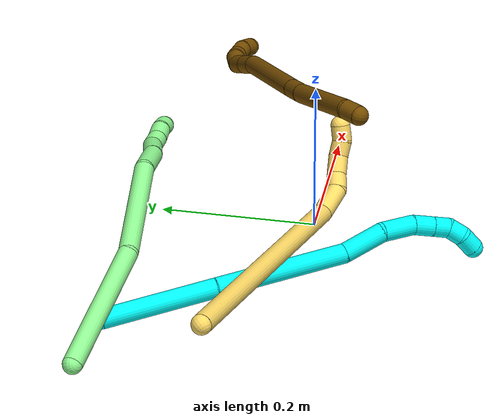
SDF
<sdf version="1.7">
 <world name="default">
  <model name="3">
   <static>0</static>
   <link name="3">
    <collision name="collision-cylinder-e_1_1_4">
     <pose>0.029293 -0.052501 -0.03943 2.21495 0.419638 0.805866</pose>
     <geometry><cylinder><radius>0.0125</radius><length>0.143794</length></cylinder></geometry>
     <surface>
      <friction><ode><mu>1.16</mu><mu2>1.16</mu2><slip1>0</slip1><slip2>0</slip2></ode></friction>
      <contact><ode><kp>1e+06</kp><kd>1</kd><max_vel>0</max_vel><min_depth>0.001</min_depth></ode></contact>
     </surface>
    </collision>
    <visual name="visual-cylinder-e_1_1_4">
     <pose>0.029293 -0.052501 -0.03943 2.21495 0.419638 0.805866</pose>
     <geometry><cylinder><radius>0.0125</radius><length>0.143794</length></cylinder></geometry>
     <material><ambient>0.003922 1 0.996078 1</ambient></material>
    </visual>
    <collision name="collision-cylinder-e_2_4_5">
     <pose>0.084116 -0.169724 -0.125956 2.19986 0.308747 0.59333</pose>
     <geometry><cylinder><radius>0.0125</radius><length>0.168033</length></cylinder></geometry>
     <surface>
      <friction><ode><mu>1.16</mu><mu2>1.16</mu2><slip1>0</slip1><slip2>0</slip2></ode></friction>
      <contact><ode><kp>1e+06</kp><kd>1</kd><max_vel>0</max_vel><min_depth>0.001</min_depth></ode></contact>
     </surface>
    </collision>
    <visual name="visual-cylinder-e_2_4_5">
     <pose>0.084116 -0.169724 -0.125956 2.19986 0.308747 0.59333</pose>
     <geometry><cylinder><radius>0.0125</radius><length>0.168033</length></cylinder></geometry>
     <material><ambient>0.003922 1 0.996078 1</ambient></material>
    </visual>
    <collision name="collision-cylinder-e_3_5_6">
     <pose>0.119012 -0.250527 -0.193002 2.46314 0.350461 0.930069</pose>
     <geometry><cylinder><radius>0.0125</radius><length>0.054565</length></cylinder></geometry>
     <surface>
      <friction><ode><mu>1.16</mu><mu2>1.16</mu2><slip1>0</slip1><slip2>0</slip2></ode></friction>
      <contact><ode><kp>1e+06</kp><kd>1</kd><max_vel>0</max_vel><min_depth>0.001</min_depth></ode></contact>
     </surface>
    </collision>
    <visual name="visual-cylinder-e_3_5_6">
     <pose>0.119012 -0.250527 -0.193002 2.46314 0.350461 0.930069</pose>
     <geometry><cylinder><radius>0.0125</radius><length>0.054565</length></cylinder></geometry>
     <material><ambient>0.003922 1 0.996078 1</ambient></material>
    </visual>
    <collision name="collision-cylinder-e_4_6_7">
     <pose>0.131897 -0.284765 -0.225082 2.1598 0.159736 0.297257</pose>
     <geometry><cylinder><radius>0.0125</radius><length>0.044234</length></cylinder></geometry>
     <surface>
      <friction><ode><mu>1.16</mu><mu2>1.16</mu2><slip1>0</slip1><slip2>0</slip2></ode></friction>
      <contact><ode><kp>1e+06</kp><kd>1</kd><max_vel>0</max_vel><min_depth>0.001</min_depth></ode></contact>
     </surface>
    </collision>
    <visual name="visual-cylinder-e_4_6_7">
     <pose>0.131897 -0.284765 -0.225082 2.1598 0.159736 0.297257</pose>
     <geometry><cylinder><radius>0.0125</radius><length>0.044234</length></cylinder></geometry>
     <material><ambient>0.003922 1 0.996078 1</ambient></material>
    </visual>
    <collision name="collision-cylinder-e_5_7_8">
     <pose>0.139739 -0.314891 -0.24067 1.85205 0.334028 0.441077</pose>
     <geometry><cylinder><radius>0.0125</radius><length>0.026378</length></cylinder></geometry>
     <surface>
      <friction><ode><mu>1.16</mu><mu2>1.16</mu2><slip1>0</slip1><slip2>0</slip2></ode></friction>
      <contact><ode><kp>1e+06</kp><kd>1</kd><max_vel>0</max_vel><min_depth>0.001</min_depth></ode></contact>
     </surface>
    </collision>
    <visual name="visual-cylinder-e_5_7_8">
     <pose>0.139739 -0.314891 -0.24067 1.85205 0.334028 0.441077</pose>
     <geometry><cylinder><radius>0.0125</radius><length>0.026378</length></cylinder></geometry>
     <material><ambient>0.003922 1 0.996078 1</ambient></material>
    </visual>
    <collision name="collision-cylinder-e_6_8_9">
     <pose>0.147428 -0.336113 -0.246798 1.85176 0.336269 0.443868</pose>
     <geometry><cylinder><radius>0.0125</radius><length>0.0204</length></cylinder></geometry>
     <surface>
      <friction><ode><mu>1.16</mu><mu2>1.16</mu2><slip1>0</slip1><slip2>0</slip2></ode></friction>
      <contact><ode><kp>1e+06</kp><kd>1</kd><max_vel>0</max_vel><min_depth>0.001</min_depth></ode></contact>
     </surface>
    </collision>
    <visual name="visual-cylinder-e_6_8_9">
     <pose>0.147428 -0.336113 -0.246798 1.85176 0.336269 0.443868</pose>
     <geometry><cylinder><radius>0.0125</radius><length>0.0204</length></cylinder></geometry>
     <material><ambient>0.003922 1 0.996078 1</ambient></material>
    </visual>
    <collision name="collision-cylinder-e_7_9_10">
     <pose>0.154352 -0.354648 -0.247384 1.34998 0.357817 0.287499</pose>
     <geometry><cylinder><radius>0.0125</radius><length>0.020318</length></cylinder></geometry>
     <surface>
      <friction><ode><mu>1.16</mu><mu2>1.16</mu2><slip1>0</slip1><slip2>0</slip2></ode></friction>
      <contact><ode><kp>1e+06</kp><kd>1</kd><max_vel>0</max_vel><min_depth>0.001</min_depth></ode></contact>
     </surface>
    </collision>
    <visual name="visual-cylinder-e_7_9_10">
     <pose>0.154352 -0.354648 -0.247384 1.34998 0.357817 0.287499</pose>
     <geometry><cylinder><radius>0.0125</radius><length>0.020318</length></cylinder></geometry>
     <material><ambient>0.003922 1 0.996078 1</ambient></material>
    </visual>
    <collision name="collision-cylinder-e_8_10_2">
     <pose>0.157429 -0.374529 -0.241897 1.26001 -0.04319 -0.031493</pose>
     <geometry><cylinder><radius>0.0125</radius><length>0.022279</length></cylinder></geometry>
     <surface>
      <friction><ode><mu>1.16</mu><mu2>1.16</mu2><slip1>0</slip1><slip2>0</slip2></ode></friction>
      <contact><ode><kp>1e+06</kp><kd>1</kd><max_vel>0</max_vel><min_depth>0.001</min_depth></ode></contact>
     </surface>
    </collision>
    <visual name="visual-cylinder-e_8_10_2">
     <pose>0.157429 -0.374529 -0.241897 1.26001 -0.04319 -0.031493</pose>
     <geometry><cylinder><radius>0.0125</radius><length>0.022279</length></cylinder></geometry>
     <material><ambient>0.003922 1 0.996078 1</ambient></material>
    </visual>
    <collision name="collision-sphere-2">
     <pose>0.156948 -0.385125 -0.238493 0 -0 0</pose>
     <geometry><sphere><radius>0.0125</radius></sphere></geometry>
     <surface>
      <friction><ode><mu>1.16</mu><mu2>1.16</mu2><slip1>0</slip1><slip2>0</slip2></ode></friction>
      <contact><ode><kp>1e+06</kp><kd>1</kd><max_vel>0</max_vel><min_depth>0.001</min_depth></ode></contact>
     </surface>
    </collision>
    <visual name="visual-sphere-2">
     <pose>0.156948 -0.385125 -0.238493 0 -0 0</pose>
     <geometry><sphere><radius>0.0125</radius></sphere></geometry>
     <material><ambient>0.003922 1 0.996078 1</ambient></material>
    </visual>
    <collision name="collision-sphere-10">
     <pose>0.15791 -0.363933 -0.2453 0 -0 0</pose>
     <geometry><sphere><radius>0.0125</radius></sphere></geometry>
     <surface>
      <friction><ode><mu>1.16</mu><mu2>1.16</mu2><slip1>0</slip1><slip2>0</slip2></ode></friction>
      <contact><ode><kp>1e+06</kp><kd>1</kd><max_vel>0</max_vel><min_depth>0.001</min_depth></ode></contact>
     </surface>
    </collision>
    <visual name="visual-sphere-10">
     <pose>0.15791 -0.363933 -0.2453 0 -0 0</pose>
     <geometry><sphere><radius>0.0125</radius></sphere></geometry>
     <material><ambient>0.003922 1 0.996078 1</ambient></material>
    </visual>
    <collision name="collision-sphere-9">
     <pose>0.150794 -0.345364 -0.249468 0 -0 0</pose>
     <geometry><sphere><radius>0.0125</radius></sphere></geometry>
     <surface>
      <friction><ode><mu>1.16</mu><mu2>1.16</mu2><slip1>0</slip1><slip2>0</slip2></ode></friction>
      <contact><ode><kp>1e+06</kp><kd>1</kd><max_vel>0</max_vel><min_depth>0.001</min_depth></ode></contact>
     </surface>
    </collision>
    <visual name="visual-sphere-9">
     <pose>0.150794 -0.345364 -0.249468 0 -0 0</pose>
     <geometry><sphere><radius>0.0125</radius></sphere></geometry>
     <material><ambient>0.003922 1 0.996078 1</ambient></material>
    </visual>
    <collision name="collision-sphere-4">
     <pose>0.058586 -0.105003 -0.078859 0 -0 0</pose>
     <geometry><sphere><radius>0.0125</radius></sphere></geometry>
     <surface>
      <friction><ode><mu>1.16</mu><mu2>1.16</mu2><slip1>0</slip1><slip2>0</slip2></ode></friction>
      <contact><ode><kp>1e+06</kp><kd>1</kd><max_vel>0</max_vel><min_depth>0.001</min_depth></ode></contact>
     </surface>
    </collision>
    <visual name="visual-sphere-4">
     <pose>0.058586 -0.105003 -0.078859 0 -0 0</pose>
     <geometry><sphere><radius>0.0125</radius></sphere></geometry>
     <material><ambient>0.003922 1 0.996078 1</ambient></material>
    </visual>
    <collision name="collision-sphere-1">
     <geometry><sphere><radius>0.0125</radius></sphere></geometry>
     <surface>
      <friction><ode><mu>1.16</mu><mu2>1.16</mu2><slip1>0</slip1><slip2>0</slip2></ode></friction>
      <contact><ode><kp>1e+06</kp><kd>1</kd><max_vel>0</max_vel><min_depth>0.001</min_depth></ode></contact>
     </surface>
    </collision>
    <visual name="visual-sphere-1">
     <geometry><sphere><radius>0.0125</radius></sphere></geometry>
     <material><ambient>0.003922 1 0.996078 1</ambient></material>
    </visual>
    <collision name="collision-sphere-8">
     <pose>0.144063 -0.326862 -0.244129 0 -0 0</pose>
     <geometry><sphere><radius>0.0125</radius></sphere></geometry>
     <surface>
      <friction><ode><mu>1.16</mu><mu2>1.16</mu2><slip1>0</slip1><slip2>0</slip2></ode></friction>
      <contact><ode><kp>1e+06</kp><kd>1</kd><max_vel>0</max_vel><min_depth>0.001</min_depth></ode></contact>
     </surface>
    </collision>
    <visual name="visual-sphere-8">
     <pose>0.144063 -0.326862 -0.244129 0 -0 0</pose>
     <geometry><sphere><radius>0.0125</radius></sphere></geometry>
     <material><ambient>0.003922 1 0.996078 1</ambient></material>
    </visual>
    <collision name="collision-sphere-5">
     <pose>0.109645 -0.234446 -0.173053 0 -0 0</pose>
     <geometry><sphere><radius>0.0125</radius></sphere></geometry>
     <surface>
      <friction><ode><mu>1.16</mu><mu2>1.16</mu2><slip1>0</slip1><slip2>0</slip2></ode></friction>
      <contact><ode><kp>1e+06</kp><kd>1</kd><max_vel>0</max_vel><min_depth>0.001</min_depth></ode></contact>
     </surface>
    </collision>
    <visual name="visual-sphere-5">
     <pose>0.109645 -0.234446 -0.173053 0 -0 0</pose>
     <geometry><sphere><radius>0.0125</radius></sphere></geometry>
     <material><ambient>0.003922 1 0.996078 1</ambient></material>
    </visual>
    <collision name="collision-sphere-6">
     <pose>0.128379 -0.266609 -0.212951 0 -0 0</pose>
     <geometry><sphere><radius>0.0125</radius></sphere></geometry>
     <surface>
      <friction><ode><mu>1.16</mu><mu2>1.16</mu2><slip1>0</slip1><slip2>0</slip2></ode></friction>
      <contact><ode><kp>1e+06</kp><kd>1</kd><max_vel>0</max_vel><min_depth>0.001</min_depth></ode></contact>
     </surface>
    </collision>
    <visual name="visual-sphere-6">
     <pose>0.128379 -0.266609 -0.212951 0 -0 0</pose>
     <geometry><sphere><radius>0.0125</radius></sphere></geometry>
     <material><ambient>0.003922 1 0.996078 1</ambient></material>
    </visual>
    <collision name="collision-sphere-7">
     <pose>0.135415 -0.302921 -0.237212 0 -0 0</pose>
     <geometry><sphere><radius>0.0125</radius></sphere></geometry>
     <surface>
      <friction><ode><mu>1.16</mu><mu2>1.16</mu2><slip1>0</slip1><slip2>0</slip2></ode></friction>
      <contact><ode><kp>1e+06</kp><kd>1</kd><max_vel>0</max_vel><min_depth>0.001</min_depth></ode></contact>
     </surface>
    </collision>
    <visual name="visual-sphere-7">
     <pose>0.135415 -0.302921 -0.237212 0 -0 0</pose>
     <geometry><sphere><radius>0.0125</radius></sphere></geometry>
     <material><ambient>0.003922 1 0.996078 1</ambient></material>
    </visual>
    <inertial>
     <pose>0.088023 -0.186095 -0.138241 0 -0 0</pose>
     <mass>0.5</mass>
     <inertia>
      <ixx>0.000911</ixx>
      <ixy>0</ixy>
      <ixz>0</ixz>
      <iyy>0.000172</iyy>
      <iyz>0</iyz>
      <izz>0.000265</izz>
     </inertia>
    </inertial>
   </link>
   <pose>-0.268062 0.213175 0.011609 2.39024 -0.535032 -2.25979</pose>
  </model>
  <model name="5">
   <static>0</static>
   <link name="5">
    <collision name="collision-cylinder-e_1_1_4">
     <pose>0.171902 0.005794 0.068855 -0.083945 1.1886 -0.056748</pose>
     <geometry><cylinder><radius>0.0125</radius><length>0.37054</length></cylinder></geometry>
     <surface>
      <friction><ode><mu>1.16</mu><mu2>1.16</mu2><slip1>0</slip1><slip2>0</slip2></ode></friction>
      <contact><ode><kp>1e+06</kp><kd>1</kd><max_vel>0</max_vel><min_depth>0.001</min_depth></ode></contact>
     </surface>
    </collision>
    <visual name="visual-cylinder-e_1_1_4">
     <pose>0.171902 0.005794 0.068855 -0.083945 1.1886 -0.056748</pose>
     <geometry><cylinder><radius>0.0125</radius><length>0.37054</length></cylinder></geometry>
     <material><ambient>1 0.858824 0.4 1</ambient></material>
    </visual>
    <collision name="collision-cylinder-e_2_4_5">
     <pose>0.359313 0.002841 0.148162 0.696792 0.849824 0.325778</pose>
     <geometry><cylinder><radius>0.0125</radius><length>0.041292</length></cylinder></geometry>
     <surface>
      <friction><ode><mu>1.16</mu><mu2>1.16</mu2><slip1>0</slip1><slip2>0</slip2></ode></friction>
      <contact><ode><kp>1e+06</kp><kd>1</kd><max_vel>0</max_vel><min_depth>0.001</min_depth></ode></contact>
     </surface>
    </collision>
    <visual name="visual-cylinder-e_2_4_5">
     <pose>0.359313 0.002841 0.148162 0.696792 0.849824 0.325778</pose>
     <geometry><cylinder><radius>0.0125</radius><length>0.041292</length></cylinder></geometry>
     <material><ambient>1 0.858824 0.4 1</ambient></material>
    </visual>
    <collision name="collision-cylinder-e_3_5_6">
     <pose>0.379373 -0.00891 0.16788 0.313547 0.437092 0.070184</pose>
     <geometry><cylinder><radius>0.0125</radius><length>0.021504</length></cylinder></geometry>
     <surface>
      <friction><ode><mu>1.16</mu><mu2>1.16</mu2><slip1>0</slip1><slip2>0</slip2></ode></friction>
      <contact><ode><kp>1e+06</kp><kd>1</kd><max_vel>0</max_vel><min_depth>0.001</min_depth></ode></contact>
     </surface>
    </collision>
    <visual name="visual-cylinder-e_3_5_6">
     <pose>0.379373 -0.00891 0.16788 0.313547 0.437092 0.070184</pose>
     <geometry><cylinder><radius>0.0125</radius><length>0.021504</length></cylinder></geometry>
     <material><ambient>1 0.858824 0.4 1</ambient></material>
    </visual>
    <collision name="collision-cylinder-e_4_6_7">
     <pose>0.388449 -0.018464 0.187512 0.563523 0.353482 0.103307</pose>
     <geometry><cylinder><radius>0.0125</radius><length>0.026141</length></cylinder></geometry>
     <surface>
      <friction><ode><mu>1.16</mu><mu2>1.16</mu2><slip1>0</slip1><slip2>0</slip2></ode></friction>
      <contact><ode><kp>1e+06</kp><kd>1</kd><max_vel>0</max_vel><min_depth>0.001</min_depth></ode></contact>
     </surface>
    </collision>
    <visual name="visual-cylinder-e_4_6_7">
     <pose>0.388449 -0.018464 0.187512 0.563523 0.353482 0.103307</pose>
     <geometry><cylinder><radius>0.0125</radius><length>0.026141</length></cylinder></geometry>
     <material><ambient>1 0.858824 0.4 1</ambient></material>
    </visual>
    <collision name="collision-cylinder-e_5_7_8">
     <pose>0.39461 -0.032951 0.204028 0.911549 0.161622 0.079358</pose>
     <geometry><cylinder><radius>0.0125</radius><length>0.020346</length></cylinder></geometry>
     <surface>
      <friction><ode><mu>1.16</mu><mu2>1.16</mu2><slip1>0</slip1><slip2>0</slip2></ode></friction>
      <contact><ode><kp>1e+06</kp><kd>1</kd><max_vel>0</max_vel><min_depth>0.001</min_depth></ode></contact>
     </surface>
    </collision>
    <visual name="visual-cylinder-e_5_7_8">
     <pose>0.39461 -0.032951 0.204028 0.911549 0.161622 0.079358</pose>
     <geometry><cylinder><radius>0.0125</radius><length>0.020346</length></cylinder></geometry>
     <material><ambient>1 0.858824 0.4 1</ambient></material>
    </visual>
    <collision name="collision-cylinder-e_6_8_2">
     <pose>0.394908 -0.047287 0.217862 0.694524 -0.133123 -0.048243</pose>
     <geometry><cylinder><radius>0.0125</radius><length>0.020178</length></cylinder></geometry>
     <surface>
      <friction><ode><mu>1.16</mu><mu2>1.16</mu2><slip1>0</slip1><slip2>0</slip2></ode></friction>
      <contact><ode><kp>1e+06</kp><kd>1</kd><max_vel>0</max_vel><min_depth>0.001</min_depth></ode></contact>
     </surface>
    </collision>
    <visual name="visual-cylinder-e_6_8_2">
     <pose>0.394908 -0.047287 0.217862 0.694524 -0.133123 -0.048243</pose>
     <geometry><cylinder><radius>0.0125</radius><length>0.020178</length></cylinder></geometry>
     <material><ambient>1 0.858824 0.4 1</ambient></material>
    </visual>
    <collision name="collision-sphere-2">
     <pose>0.393569 -0.053687 0.225545 0 -0 0</pose>
     <geometry><sphere><radius>0.0125</radius></sphere></geometry>
     <surface>
      <friction><ode><mu>1.16</mu><mu2>1.16</mu2><slip1>0</slip1><slip2>0</slip2></ode></friction>
      <contact><ode><kp>1e+06</kp><kd>1</kd><max_vel>0</max_vel><min_depth>0.001</min_depth></ode></contact>
     </surface>
    </collision>
    <visual name="visual-sphere-2">
     <pose>0.393569 -0.053687 0.225545 0 -0 0</pose>
     <geometry><sphere><radius>0.0125</radius></sphere></geometry>
     <material><ambient>1 0.858824 0.4 1</ambient></material>
    </visual>
    <collision name="collision-sphere-4">
     <pose>0.343805 0.011587 0.13771 0 -0 0</pose>
     <geometry><sphere><radius>0.0125</radius></sphere></geometry>
     <surface>
      <friction><ode><mu>1.16</mu><mu2>1.16</mu2><slip1>0</slip1><slip2>0</slip2></ode></friction>
      <contact><ode><kp>1e+06</kp><kd>1</kd><max_vel>0</max_vel><min_depth>0.001</min_depth></ode></contact>
     </surface>
    </collision>
    <visual name="visual-sphere-4">
     <pose>0.343805 0.011587 0.13771 0 -0 0</pose>
     <geometry><sphere><radius>0.0125</radius></sphere></geometry>
     <material><ambient>1 0.858824 0.4 1</ambient></material>
    </visual>
    <collision name="collision-sphere-1">
     <geometry><sphere><radius>0.0125</radius></sphere></geometry>
     <surface>
      <friction><ode><mu>1.16</mu><mu2>1.16</mu2><slip1>0</slip1><slip2>0</slip2></ode></friction>
      <contact><ode><kp>1e+06</kp><kd>1</kd><max_vel>0</max_vel><min_depth>0.001</min_depth></ode></contact>
     </surface>
    </collision>
    <visual name="visual-sphere-1">
     <geometry><sphere><radius>0.0125</radius></sphere></geometry>
     <material><ambient>1 0.858824 0.4 1</ambient></material>
    </visual>
    <collision name="collision-sphere-8">
     <pose>0.396247 -0.040887 0.210178 0 -0 0</pose>
     <geometry><sphere><radius>0.0125</radius></sphere></geometry>
     <surface>
      <friction><ode><mu>1.16</mu><mu2>1.16</mu2><slip1>0</slip1><slip2>0</slip2></ode></friction>
      <contact><ode><kp>1e+06</kp><kd>1</kd><max_vel>0</max_vel><min_depth>0.001</min_depth></ode></contact>
     </surface>
    </collision>
    <visual name="visual-sphere-8">
     <pose>0.396247 -0.040887 0.210178 0 -0 0</pose>
     <geometry><sphere><radius>0.0125</radius></sphere></geometry>
     <material><ambient>1 0.858824 0.4 1</ambient></material>
    </visual>
    <collision name="collision-sphere-5">
     <pose>0.374822 -0.005905 0.158614 0 -0 0</pose>
     <geometry><sphere><radius>0.0125</radius></sphere></geometry>
     <surface>
      <friction><ode><mu>1.16</mu><mu2>1.16</mu2><slip1>0</slip1><slip2>0</slip2></ode></friction>
      <contact><ode><kp>1e+06</kp><kd>1</kd><max_vel>0</max_vel><min_depth>0.001</min_depth></ode></contact>
     </surface>
    </collision>
    <visual name="visual-sphere-5">
     <pose>0.374822 -0.005905 0.158614 0 -0 0</pose>
     <geometry><sphere><radius>0.0125</radius></sphere></geometry>
     <material><ambient>1 0.858824 0.4 1</ambient></material>
    </visual>
    <collision name="collision-sphere-6">
     <pose>0.383924 -0.011914 0.177146 0 -0 0</pose>
     <geometry><sphere><radius>0.0125</radius></sphere></geometry>
     <surface>
      <friction><ode><mu>1.16</mu><mu2>1.16</mu2><slip1>0</slip1><slip2>0</slip2></ode></friction>
      <contact><ode><kp>1e+06</kp><kd>1</kd><max_vel>0</max_vel><min_depth>0.001</min_depth></ode></contact>
     </surface>
    </collision>
    <visual name="visual-sphere-6">
     <pose>0.383924 -0.011914 0.177146 0 -0 0</pose>
     <geometry><sphere><radius>0.0125</radius></sphere></geometry>
     <material><ambient>1 0.858824 0.4 1</ambient></material>
    </visual>
    <collision name="collision-sphere-7">
     <pose>0.392973 -0.025014 0.197879 0 -0 0</pose>
     <geometry><sphere><radius>0.0125</radius></sphere></geometry>
     <surface>
      <friction><ode><mu>1.16</mu><mu2>1.16</mu2><slip1>0</slip1><slip2>0</slip2></ode></friction>
      <contact><ode><kp>1e+06</kp><kd>1</kd><max_vel>0</max_vel><min_depth>0.001</min_depth></ode></contact>
     </surface>
    </collision>
    <visual name="visual-sphere-7">
     <pose>0.392973 -0.025014 0.197879 0 -0 0</pose>
     <geometry><sphere><radius>0.0125</radius></sphere></geometry>
     <material><ambient>1 0.858824 0.4 1</ambient></material>
    </visual>
    <inertial>
     <pose>0.225685 -6.9e-05 0.097381 0 -0 0</pose>
     <mass>0.5</mass>
     <inertia>
      <ixx>0.001538</ixx>
      <ixy>0</ixy>
      <ixz>0</ixz>
      <iyy>0.004171</iyy>
      <iyz>0</iyz>
      <izz>-0.004063</izz>
     </inertia>
    </inertial>
   </link>
   <pose>-0.380001 0.065043 0.101833 -1.05404 0.360237 -0.570574</pose>
  </model>
  <model name="12">
   <static>0</static>
   <link name="12">
    <collision name="collision-cylinder-e_1_1_4">
     <pose>0.005693 0.010055 -0.002356 -1.80098 0.50383 -0.627867</pose>
     <geometry><cylinder><radius>0.0125</radius><length>0.023586</length></cylinder></geometry>
     <surface>
      <friction><ode><mu>1.16</mu><mu2>1.16</mu2><slip1>0</slip1><slip2>0</slip2></ode></friction>
      <contact><ode><kp>1e+06</kp><kd>1</kd><max_vel>0</max_vel><min_depth>0.001</min_depth></ode></contact>
     </surface>
    </collision>
    <visual name="visual-cylinder-e_1_1_4">
     <pose>0.005693 0.010055 -0.002356 -1.80098 0.50383 -0.627867</pose>
     <geometry><cylinder><radius>0.0125</radius><length>0.023586</length></cylinder></geometry>
     <material><ambient>0.466667 0.301961 0 1</ambient></material>
    </visual>
    <collision name="collision-cylinder-e_2_4_5">
     <pose>0.05344 0.059803 -0.03007 -2.13929 0.728836 -1.21654</pose>
     <geometry><cylinder><radius>0.0125</radius><length>0.126284</length></cylinder></geometry>
     <surface>
      <friction><ode><mu>1.16</mu><mu2>1.16</mu2><slip1>0</slip1><slip2>0</slip2></ode></friction>
      <contact><ode><kp>1e+06</kp><kd>1</kd><max_vel>0</max_vel><min_depth>0.001</min_depth></ode></contact>
     </surface>
    </collision>
    <visual name="visual-cylinder-e_2_4_5">
     <pose>0.05344 0.059803 -0.03007 -2.13929 0.728836 -1.21654</pose>
     <geometry><cylinder><radius>0.0125</radius><length>0.126284</length></cylinder></geometry>
     <material><ambient>0.466667 0.301961 0 1</ambient></material>
    </visual>
    <collision name="collision-cylinder-e_3_5_6">
     <pose>0.107157 0.108757 -0.061208 -2.12879 0.818454 -1.32729</pose>
     <geometry><cylinder><radius>0.0125</radius><length>0.031954</length></cylinder></geometry>
     <surface>
      <friction><ode><mu>1.16</mu><mu2>1.16</mu2><slip1>0</slip1><slip2>0</slip2></ode></friction>
      <contact><ode><kp>1e+06</kp><kd>1</kd><max_vel>0</max_vel><min_depth>0.001</min_depth></ode></contact>
     </surface>
    </collision>
    <visual name="visual-cylinder-e_3_5_6">
     <pose>0.107157 0.108757 -0.061208 -2.12879 0.818454 -1.32729</pose>
     <geometry><cylinder><radius>0.0125</radius><length>0.031954</length></cylinder></geometry>
     <material><ambient>0.466667 0.301961 0 1</ambient></material>
    </visual>
    <collision name="collision-cylinder-e_4_6_7">
     <pose>0.183915 0.16473 -0.098248 -2.16054 0.858547 -1.41719</pose>
     <geometry><cylinder><radius>0.0125</radius><length>0.172002</length></cylinder></geometry>
     <surface>
      <friction><ode><mu>1.16</mu><mu2>1.16</mu2><slip1>0</slip1><slip2>0</slip2></ode></friction>
      <contact><ode><kp>1e+06</kp><kd>1</kd><max_vel>0</max_vel><min_depth>0.001</min_depth></ode></contact>
     </surface>
    </collision>
    <visual name="visual-cylinder-e_4_6_7">
     <pose>0.183915 0.16473 -0.098248 -2.16054 0.858547 -1.41719</pose>
     <geometry><cylinder><radius>0.0125</radius><length>0.172002</length></cylinder></geometry>
     <material><ambient>0.466667 0.301961 0 1</ambient></material>
    </visual>
    <collision name="collision-cylinder-e_5_7_8">
     <pose>0.260595 0.220496 -0.138448 -2.3499 0.738531 -1.49408</pose>
     <geometry><cylinder><radius>0.0125</radius><length>0.034422</length></cylinder></geometry>
     <surface>
      <friction><ode><mu>1.16</mu><mu2>1.16</mu2><slip1>0</slip1><slip2>0</slip2></ode></friction>
      <contact><ode><kp>1e+06</kp><kd>1</kd><max_vel>0</max_vel><min_depth>0.001</min_depth></ode></contact>
     </surface>
    </collision>
    <visual name="visual-cylinder-e_5_7_8">
     <pose>0.260595 0.220496 -0.138448 -2.3499 0.738531 -1.49408</pose>
     <geometry><cylinder><radius>0.0125</radius><length>0.034422</length></cylinder></geometry>
     <material><ambient>0.466667 0.301961 0 1</ambient></material>
    </visual>
    <collision name="collision-cylinder-e_6_8_9">
     <pose>0.282537 0.237938 -0.15533 -2.32885 0.731028 -1.45381</pose>
     <geometry><cylinder><radius>0.0125</radius><length>0.031022</length></cylinder></geometry>
     <surface>
      <friction><ode><mu>1.16</mu><mu2>1.16</mu2><slip1>0</slip1><slip2>0</slip2></ode></friction>
      <contact><ode><kp>1e+06</kp><kd>1</kd><max_vel>0</max_vel><min_depth>0.001</min_depth></ode></contact>
     </surface>
    </collision>
    <visual name="visual-cylinder-e_6_8_9">
     <pose>0.282537 0.237938 -0.15533 -2.32885 0.731028 -1.45381</pose>
     <geometry><cylinder><radius>0.0125</radius><length>0.031022</length></cylinder></geometry>
     <material><ambient>0.466667 0.301961 0 1</ambient></material>
    </visual>
    <collision name="collision-cylinder-e_7_9_10">
     <pose>0.301722 0.251277 -0.163848 -1.68716 1.05662 -1.16095</pose>
     <geometry><cylinder><radius>0.0125</radius><length>0.02028</length></cylinder></geometry>
     <surface>
      <friction><ode><mu>1.16</mu><mu2>1.16</mu2><slip1>0</slip1><slip2>0</slip2></ode></friction>
      <contact><ode><kp>1e+06</kp><kd>1</kd><max_vel>0</max_vel><min_depth>0.001</min_depth></ode></contact>
     </surface>
    </collision>
    <visual name="visual-cylinder-e_7_9_10">
     <pose>0.301722 0.251277 -0.163848 -1.68716 1.05662 -1.16095</pose>
     <geometry><cylinder><radius>0.0125</radius><length>0.02028</length></cylinder></geometry>
     <material><ambient>0.466667 0.301961 0 1</ambient></material>
    </visual>
    <collision name="collision-cylinder-e_8_10_11">
     <pose>0.320109 0.257626 -0.167198 -2.67513 1.25688 -2.50973</pose>
     <geometry><cylinder><radius>0.0125</radius><length>0.020097</length></cylinder></geometry>
     <surface>
      <friction><ode><mu>1.16</mu><mu2>1.16</mu2><slip1>0</slip1><slip2>0</slip2></ode></friction>
      <contact><ode><kp>1e+06</kp><kd>1</kd><max_vel>0</max_vel><min_depth>0.001</min_depth></ode></contact>
     </surface>
    </collision>
    <visual name="visual-cylinder-e_8_10_11">
     <pose>0.320109 0.257626 -0.167198 -2.67513 1.25688 -2.50973</pose>
     <geometry><cylinder><radius>0.0125</radius><length>0.020097</length></cylinder></geometry>
     <material><ambient>0.466667 0.301961 0 1</ambient></material>
    </visual>
    <collision name="collision-cylinder-e_9_11_12">
     <pose>0.339699 0.259333 -0.169826 -1.13898 1.53659 -1.10813</pose>
     <geometry><cylinder><radius>0.0125</radius><length>0.020077</length></cylinder></geometry>
     <surface>
      <friction><ode><mu>1.16</mu><mu2>1.16</mu2><slip1>0</slip1><slip2>0</slip2></ode></friction>
      <contact><ode><kp>1e+06</kp><kd>1</kd><max_vel>0</max_vel><min_depth>0.001</min_depth></ode></contact>
     </surface>
    </collision>
    <visual name="visual-cylinder-e_9_11_12">
     <pose>0.339699 0.259333 -0.169826 -1.13898 1.53659 -1.10813</pose>
     <geometry><cylinder><radius>0.0125</radius><length>0.020077</length></cylinder></geometry>
     <material><ambient>0.466667 0.301961 0 1</ambient></material>
    </visual>
    <collision name="collision-cylinder-e_10_12_2">
     <pose>0.359438 0.25728 -0.171403 2.19991 1.2782 1.94047</pose>
     <geometry><cylinder><radius>0.0125</radius><length>0.020276</length></cylinder></geometry>
     <surface>
      <friction><ode><mu>1.16</mu><mu2>1.16</mu2><slip1>0</slip1><slip2>0</slip2></ode></friction>
      <contact><ode><kp>1e+06</kp><kd>1</kd><max_vel>0</max_vel><min_depth>0.001</min_depth></ode></contact>
     </surface>
    </collision>
    <visual name="visual-cylinder-e_10_12_2">
     <pose>0.359438 0.25728 -0.171403 2.19991 1.2782 1.94047</pose>
     <geometry><cylinder><radius>0.0125</radius><length>0.020276</length></cylinder></geometry>
     <material><ambient>0.466667 0.301961 0 1</ambient></material>
    </visual>
    <collision name="collision-sphere-2">
     <pose>0.369145 0.254916 -0.173124 0 -0 0</pose>
     <geometry><sphere><radius>0.0125</radius></sphere></geometry>
     <surface>
      <friction><ode><mu>1.16</mu><mu2>1.16</mu2><slip1>0</slip1><slip2>0</slip2></ode></friction>
      <contact><ode><kp>1e+06</kp><kd>1</kd><max_vel>0</max_vel><min_depth>0.001</min_depth></ode></contact>
     </surface>
    </collision>
    <visual name="visual-sphere-2">
     <pose>0.369145 0.254916 -0.173124 0 -0 0</pose>
     <geometry><sphere><radius>0.0125</radius></sphere></geometry>
     <material><ambient>0.466667 0.301961 0 1</ambient></material>
    </visual>
    <collision name="collision-sphere-12">
     <pose>0.349731 0.259645 -0.169682 0 -0 0</pose>
     <geometry><sphere><radius>0.0125</radius></sphere></geometry>
     <surface>
      <friction><ode><mu>1.16</mu><mu2>1.16</mu2><slip1>0</slip1><slip2>0</slip2></ode></friction>
      <contact><ode><kp>1e+06</kp><kd>1</kd><max_vel>0</max_vel><min_depth>0.001</min_depth></ode></contact>
     </surface>
    </collision>
    <visual name="visual-sphere-12">
     <pose>0.349731 0.259645 -0.169682 0 -0 0</pose>
     <geometry><sphere><radius>0.0125</radius></sphere></geometry>
     <material><ambient>0.466667 0.301961 0 1</ambient></material>
    </visual>
    <collision name="collision-sphere-11">
     <pose>0.329666 0.259021 -0.16997 0 -0 0</pose>
     <geometry><sphere><radius>0.0125</radius></sphere></geometry>
     <surface>
      <friction><ode><mu>1.16</mu><mu2>1.16</mu2><slip1>0</slip1><slip2>0</slip2></ode></friction>
      <contact><ode><kp>1e+06</kp><kd>1</kd><max_vel>0</max_vel><min_depth>0.001</min_depth></ode></contact>
     </surface>
    </collision>
    <visual name="visual-sphere-11">
     <pose>0.329666 0.259021 -0.16997 0 -0 0</pose>
     <geometry><sphere><radius>0.0125</radius></sphere></geometry>
     <material><ambient>0.466667 0.301961 0 1</ambient></material>
    </visual>
    <collision name="collision-sphere-10">
     <pose>0.310551 0.25623 -0.164427 0 -0 0</pose>
     <geometry><sphere><radius>0.0125</radius></sphere></geometry>
     <surface>
      <friction><ode><mu>1.16</mu><mu2>1.16</mu2><slip1>0</slip1><slip2>0</slip2></ode></friction>
      <contact><ode><kp>1e+06</kp><kd>1</kd><max_vel>0</max_vel><min_depth>0.001</min_depth></ode></contact>
     </surface>
    </collision>
    <visual name="visual-sphere-10">
     <pose>0.310551 0.25623 -0.164427 0 -0 0</pose>
     <geometry><sphere><radius>0.0125</radius></sphere></geometry>
     <material><ambient>0.466667 0.301961 0 1</ambient></material>
    </visual>
    <collision name="collision-sphere-9">
     <pose>0.292893 0.246323 -0.163269 0 -0 0</pose>
     <geometry><sphere><radius>0.0125</radius></sphere></geometry>
     <surface>
      <friction><ode><mu>1.16</mu><mu2>1.16</mu2><slip1>0</slip1><slip2>0</slip2></ode></friction>
      <contact><ode><kp>1e+06</kp><kd>1</kd><max_vel>0</max_vel><min_depth>0.001</min_depth></ode></contact>
     </surface>
    </collision>
    <visual name="visual-sphere-9">
     <pose>0.292893 0.246323 -0.163269 0 -0 0</pose>
     <geometry><sphere><radius>0.0125</radius></sphere></geometry>
     <material><ambient>0.466667 0.301961 0 1</ambient></material>
    </visual>
    <collision name="collision-sphere-4">
     <pose>0.011387 0.02011 -0.004713 0 -0 0</pose>
     <geometry><sphere><radius>0.0125</radius></sphere></geometry>
     <surface>
      <friction><ode><mu>1.16</mu><mu2>1.16</mu2><slip1>0</slip1><slip2>0</slip2></ode></friction>
      <contact><ode><kp>1e+06</kp><kd>1</kd><max_vel>0</max_vel><min_depth>0.001</min_depth></ode></contact>
     </surface>
    </collision>
    <visual name="visual-sphere-4">
     <pose>0.011387 0.02011 -0.004713 0 -0 0</pose>
     <geometry><sphere><radius>0.0125</radius></sphere></geometry>
     <material><ambient>0.466667 0.301961 0 1</ambient></material>
    </visual>
    <collision name="collision-sphere-1">
     <geometry><sphere><radius>0.0125</radius></sphere></geometry>
     <surface>
      <friction><ode><mu>1.16</mu><mu2>1.16</mu2><slip1>0</slip1><slip2>0</slip2></ode></friction>
      <contact><ode><kp>1e+06</kp><kd>1</kd><max_vel>0</max_vel><min_depth>0.001</min_depth></ode></contact>
     </surface>
    </collision>
    <visual name="visual-sphere-1">
     <geometry><sphere><radius>0.0125</radius></sphere></geometry>
     <material><ambient>0.466667 0.301961 0 1</ambient></material>
    </visual>
    <collision name="collision-sphere-8">
     <pose>0.272182 0.229552 -0.14739 0 -0 0</pose>
     <geometry><sphere><radius>0.0125</radius></sphere></geometry>
     <surface>
      <friction><ode><mu>1.16</mu><mu2>1.16</mu2><slip1>0</slip1><slip2>0</slip2></ode></friction>
      <contact><ode><kp>1e+06</kp><kd>1</kd><max_vel>0</max_vel><min_depth>0.001</min_depth></ode></contact>
     </surface>
    </collision>
    <visual name="visual-sphere-8">
     <pose>0.272182 0.229552 -0.14739 0 -0 0</pose>
     <geometry><sphere><radius>0.0125</radius></sphere></geometry>
     <material><ambient>0.466667 0.301961 0 1</ambient></material>
    </visual>
    <collision name="collision-sphere-5">
     <pose>0.095492 0.099495 -0.055427 0 -0 0</pose>
     <geometry><sphere><radius>0.0125</radius></sphere></geometry>
     <surface>
      <friction><ode><mu>1.16</mu><mu2>1.16</mu2><slip1>0</slip1><slip2>0</slip2></ode></friction>
      <contact><ode><kp>1e+06</kp><kd>1</kd><max_vel>0</max_vel><min_depth>0.001</min_depth></ode></contact>
     </surface>
    </collision>
    <visual name="visual-sphere-5">
     <pose>0.095492 0.099495 -0.055427 0 -0 0</pose>
     <geometry><sphere><radius>0.0125</radius></sphere></geometry>
     <material><ambient>0.466667 0.301961 0 1</ambient></material>
    </visual>
    <collision name="collision-sphere-6">
     <pose>0.118821 0.118019 -0.066989 0 -0 0</pose>
     <geometry><sphere><radius>0.0125</radius></sphere></geometry>
     <surface>
      <friction><ode><mu>1.16</mu><mu2>1.16</mu2><slip1>0</slip1><slip2>0</slip2></ode></friction>
      <contact><ode><kp>1e+06</kp><kd>1</kd><max_vel>0</max_vel><min_depth>0.001</min_depth></ode></contact>
     </surface>
    </collision>
    <visual name="visual-sphere-6">
     <pose>0.118821 0.118019 -0.066989 0 -0 0</pose>
     <geometry><sphere><radius>0.0125</radius></sphere></geometry>
     <material><ambient>0.466667 0.301961 0 1</ambient></material>
    </visual>
    <collision name="collision-sphere-7">
     <pose>0.249009 0.211441 -0.129506 0 -0 0</pose>
     <geometry><sphere><radius>0.0125</radius></sphere></geometry>
     <surface>
      <friction><ode><mu>1.16</mu><mu2>1.16</mu2><slip1>0</slip1><slip2>0</slip2></ode></friction>
      <contact><ode><kp>1e+06</kp><kd>1</kd><max_vel>0</max_vel><min_depth>0.001</min_depth></ode></contact>
     </surface>
    </collision>
    <visual name="visual-sphere-7">
     <pose>0.249009 0.211441 -0.129506 0 -0 0</pose>
     <geometry><sphere><radius>0.0125</radius></sphere></geometry>
     <material><ambient>0.466667 0.301961 0 1</ambient></material>
    </visual>
    <inertial>
     <pose>0.172672 0.150532 -0.09172 0 -0 0</pose>
     <mass>0.5</mass>
     <inertia>
      <ixx>-0.00029</ixx>
      <ixy>0</ixy>
      <ixz>0</ixz>
      <iyy>-8.9e-05</iyy>
      <iyz>0</iyz>
      <izz>-0.000821</izz>
     </inertia>
    </inertial>
   </link>
   <pose>-0.016896 -0.056928 0.177914 0.207544 0.066009 -0.177907</pose>
  </model>
  <model name="13">
   <static>0</static>
   <link name="13">
    <collision name="collision-cylinder-e_1_1_4">
     <pose>0.072967 0.042751 0.009371 -1.35502 1.03052 -0.855007</pose>
     <geometry><cylinder><radius>0.0125</radius><length>0.170172</length></cylinder></geometry>
     <surface>
      <friction><ode><mu>1.16</mu><mu2>1.16</mu2><slip1>0</slip1><slip2>0</slip2></ode></friction>
      <contact><ode><kp>1e+06</kp><kd>1</kd><max_vel>0</max_vel><min_depth>0.001</min_depth></ode></contact>
     </surface>
    </collision>
    <visual name="visual-cylinder-e_1_1_4">
     <pose>0.072967 0.042751 0.009371 -1.35502 1.03052 -0.855007</pose>
     <geometry><cylinder><radius>0.0125</radius><length>0.170172</length></cylinder></geometry>
     <material><ambient>0.564706 0.984314 0.572549 1</ambient></material>
    </visual>
    <collision name="collision-cylinder-e_2_4_5">
     <pose>0.206825 0.119051 0.051148 -0.8027 0.917117 -0.413026</pose>
     <geometry><cylinder><radius>0.0125</radius><length>0.153407</length></cylinder></geometry>
     <surface>
      <friction><ode><mu>1.16</mu><mu2>1.16</mu2><slip1>0</slip1><slip2>0</slip2></ode></friction>
      <contact><ode><kp>1e+06</kp><kd>1</kd><max_vel>0</max_vel><min_depth>0.001</min_depth></ode></contact>
     </surface>
    </collision>
    <visual name="visual-cylinder-e_2_4_5">
     <pose>0.206825 0.119051 0.051148 -0.8027 0.917117 -0.413026</pose>
     <geometry><cylinder><radius>0.0125</radius><length>0.153407</length></cylinder></geometry>
     <material><ambient>0.564706 0.984314 0.572549 1</ambient></material>
    </visual>
    <collision name="collision-cylinder-e_3_5_6">
     <pose>0.282351 0.172415 0.100735 -0.856552 0.508956 -0.236399</pose>
     <geometry><cylinder><radius>0.0125</radius><length>0.060066</length></cylinder></geometry>
     <surface>
      <friction><ode><mu>1.16</mu><mu2>1.16</mu2><slip1>0</slip1><slip2>0</slip2></ode></friction>
      <contact><ode><kp>1e+06</kp><kd>1</kd><max_vel>0</max_vel><min_depth>0.001</min_depth></ode></contact>
     </surface>
    </collision>
    <visual name="visual-cylinder-e_3_5_6">
     <pose>0.282351 0.172415 0.100735 -0.856552 0.508956 -0.236399</pose>
     <geometry><cylinder><radius>0.0125</radius><length>0.060066</length></cylinder></geometry>
     <material><ambient>0.564706 0.984314 0.572549 1</ambient></material>
    </visual>
    <collision name="collision-cylinder-e_4_6_7">
     <pose>0.307297 0.20584 0.135745 -0.651876 0.430936 -0.147681</pose>
     <geometry><cylinder><radius>0.0125</radius><length>0.049374</length></cylinder></geometry>
     <surface>
      <friction><ode><mu>1.16</mu><mu2>1.16</mu2><slip1>0</slip1><slip2>0</slip2></ode></friction>
      <contact><ode><kp>1e+06</kp><kd>1</kd><max_vel>0</max_vel><min_depth>0.001</min_depth></ode></contact>
     </surface>
    </collision>
    <visual name="visual-cylinder-e_4_6_7">
     <pose>0.307297 0.20584 0.135745 -0.651876 0.430936 -0.147681</pose>
     <geometry><cylinder><radius>0.0125</radius><length>0.049374</length></cylinder></geometry>
     <material><ambient>0.564706 0.984314 0.572549 1</ambient></material>
    </visual>
    <collision name="collision-cylinder-e_5_7_8">
     <pose>0.324401 0.226879 0.158438 -0.991492 0.652896 -0.36217</pose>
     <geometry><cylinder><radius>0.0125</radius><length>0.02236</length></cylinder></geometry>
     <surface>
      <friction><ode><mu>1.16</mu><mu2>1.16</mu2><slip1>0</slip1><slip2>0</slip2></ode></friction>
      <contact><ode><kp>1e+06</kp><kd>1</kd><max_vel>0</max_vel><min_depth>0.001</min_depth></ode></contact>
     </surface>
    </collision>
    <visual name="visual-cylinder-e_5_7_8">
     <pose>0.324401 0.226879 0.158438 -0.991492 0.652896 -0.36217</pose>
     <geometry><cylinder><radius>0.0125</radius><length>0.02236</length></cylinder></geometry>
     <material><ambient>0.564706 0.984314 0.572549 1</ambient></material>
    </visual>
    <collision name="collision-cylinder-e_6_8_9">
     <pose>0.339379 0.241 0.168635 -0.897459 0.763232 -0.381727</pose>
     <geometry><cylinder><radius>0.0125</radius><length>0.023684</length></cylinder></geometry>
     <surface>
      <friction><ode><mu>1.16</mu><mu2>1.16</mu2><slip1>0</slip1><slip2>0</slip2></ode></friction>
      <contact><ode><kp>1e+06</kp><kd>1</kd><max_vel>0</max_vel><min_depth>0.001</min_depth></ode></contact>
     </surface>
    </collision>
    <visual name="visual-cylinder-e_6_8_9">
     <pose>0.339379 0.241 0.168635 -0.897459 0.763232 -0.381727</pose>
     <geometry><cylinder><radius>0.0125</radius><length>0.023684</length></cylinder></geometry>
     <material><ambient>0.564706 0.984314 0.572549 1</ambient></material>
    </visual>
    <collision name="collision-cylinder-e_7_9_2">
     <pose>0.352411 0.255154 0.179483 -0.934756 0.481383 -0.246487</pose>
     <geometry><cylinder><radius>0.0125</radius><length>0.020936</length></cylinder></geometry>
     <surface>
      <friction><ode><mu>1.16</mu><mu2>1.16</mu2><slip1>0</slip1><slip2>0</slip2></ode></friction>
      <contact><ode><kp>1e+06</kp><kd>1</kd><max_vel>0</max_vel><min_depth>0.001</min_depth></ode></contact>
     </surface>
    </collision>
    <visual name="visual-cylinder-e_7_9_2">
     <pose>0.352411 0.255154 0.179483 -0.934756 0.481383 -0.246487</pose>
     <geometry><cylinder><radius>0.0125</radius><length>0.020936</length></cylinder></geometry>
     <material><ambient>0.564706 0.984314 0.572549 1</ambient></material>
    </visual>
    <collision name="collision-sphere-2">
     <pose>0.357258 0.262618 0.184995 0 -0 0</pose>
     <geometry><sphere><radius>0.0125</radius></sphere></geometry>
     <surface>
      <friction><ode><mu>1.16</mu><mu2>1.16</mu2><slip1>0</slip1><slip2>0</slip2></ode></friction>
      <contact><ode><kp>1e+06</kp><kd>1</kd><max_vel>0</max_vel><min_depth>0.001</min_depth></ode></contact>
     </surface>
    </collision>
    <visual name="visual-sphere-2">
     <pose>0.357258 0.262618 0.184995 0 -0 0</pose>
     <geometry><sphere><radius>0.0125</radius></sphere></geometry>
     <material><ambient>0.564706 0.984314 0.572549 1</ambient></material>
    </visual>
    <collision name="collision-sphere-9">
     <pose>0.347565 0.24769 0.173972 0 -0 0</pose>
     <geometry><sphere><radius>0.0125</radius></sphere></geometry>
     <surface>
      <friction><ode><mu>1.16</mu><mu2>1.16</mu2><slip1>0</slip1><slip2>0</slip2></ode></friction>
      <contact><ode><kp>1e+06</kp><kd>1</kd><max_vel>0</max_vel><min_depth>0.001</min_depth></ode></contact>
     </surface>
    </collision>
    <visual name="visual-sphere-9">
     <pose>0.347565 0.24769 0.173972 0 -0 0</pose>
     <geometry><sphere><radius>0.0125</radius></sphere></geometry>
     <material><ambient>0.564706 0.984314 0.572549 1</ambient></material>
    </visual>
    <collision name="collision-sphere-4">
     <pose>0.145934 0.085502 0.018741 0 -0 0</pose>
     <geometry><sphere><radius>0.0125</radius></sphere></geometry>
     <surface>
      <friction><ode><mu>1.16</mu><mu2>1.16</mu2><slip1>0</slip1><slip2>0</slip2></ode></friction>
      <contact><ode><kp>1e+06</kp><kd>1</kd><max_vel>0</max_vel><min_depth>0.001</min_depth></ode></contact>
     </surface>
    </collision>
    <visual name="visual-sphere-4">
     <pose>0.145934 0.085502 0.018741 0 -0 0</pose>
     <geometry><sphere><radius>0.0125</radius></sphere></geometry>
     <material><ambient>0.564706 0.984314 0.572549 1</ambient></material>
    </visual>
    <collision name="collision-sphere-1">
     <geometry><sphere><radius>0.0125</radius></sphere></geometry>
     <surface>
      <friction><ode><mu>1.16</mu><mu2>1.16</mu2><slip1>0</slip1><slip2>0</slip2></ode></friction>
      <contact><ode><kp>1e+06</kp><kd>1</kd><max_vel>0</max_vel><min_depth>0.001</min_depth></ode></contact>
     </surface>
    </collision>
    <visual name="visual-sphere-1">
     <geometry><sphere><radius>0.0125</radius></sphere></geometry>
     <material><ambient>0.564706 0.984314 0.572549 1</ambient></material>
    </visual>
    <collision name="collision-sphere-8">
     <pose>0.331193 0.234311 0.163299 0 -0 0</pose>
     <geometry><sphere><radius>0.0125</radius></sphere></geometry>
     <surface>
      <friction><ode><mu>1.16</mu><mu2>1.16</mu2><slip1>0</slip1><slip2>0</slip2></ode></friction>
      <contact><ode><kp>1e+06</kp><kd>1</kd><max_vel>0</max_vel><min_depth>0.001</min_depth></ode></contact>
     </surface>
    </collision>
    <visual name="visual-sphere-8">
     <pose>0.331193 0.234311 0.163299 0 -0 0</pose>
     <geometry><sphere><radius>0.0125</radius></sphere></geometry>
     <material><ambient>0.564706 0.984314 0.572549 1</ambient></material>
    </visual>
    <collision name="collision-sphere-5">
     <pose>0.267716 0.152599 0.083555 0 -0 0</pose>
     <geometry><sphere><radius>0.0125</radius></sphere></geometry>
     <surface>
      <friction><ode><mu>1.16</mu><mu2>1.16</mu2><slip1>0</slip1><slip2>0</slip2></ode></friction>
      <contact><ode><kp>1e+06</kp><kd>1</kd><max_vel>0</max_vel><min_depth>0.001</min_depth></ode></contact>
     </surface>
    </collision>
    <visual name="visual-sphere-5">
     <pose>0.267716 0.152599 0.083555 0 -0 0</pose>
     <geometry><sphere><radius>0.0125</radius></sphere></geometry>
     <material><ambient>0.564706 0.984314 0.572549 1</ambient></material>
    </visual>
    <collision name="collision-sphere-6">
     <pose>0.296985 0.192232 0.117915 0 -0 0</pose>
     <geometry><sphere><radius>0.0125</radius></sphere></geometry>
     <surface>
      <friction><ode><mu>1.16</mu><mu2>1.16</mu2><slip1>0</slip1><slip2>0</slip2></ode></friction>
      <contact><ode><kp>1e+06</kp><kd>1</kd><max_vel>0</max_vel><min_depth>0.001</min_depth></ode></contact>
     </surface>
    </collision>
    <visual name="visual-sphere-6">
     <pose>0.296985 0.192232 0.117915 0 -0 0</pose>
     <geometry><sphere><radius>0.0125</radius></sphere></geometry>
     <material><ambient>0.564706 0.984314 0.572549 1</ambient></material>
    </visual>
    <collision name="collision-sphere-7">
     <pose>0.317609 0.219448 0.153576 0 -0 0</pose>
     <geometry><sphere><radius>0.0125</radius></sphere></geometry>
     <surface>
      <friction><ode><mu>1.16</mu><mu2>1.16</mu2><slip1>0</slip1><slip2>0</slip2></ode></friction>
      <contact><ode><kp>1e+06</kp><kd>1</kd><max_vel>0</max_vel><min_depth>0.001</min_depth></ode></contact>
     </surface>
    </collision>
    <visual name="visual-sphere-7">
     <pose>0.317609 0.219448 0.153576 0 -0 0</pose>
     <geometry><sphere><radius>0.0125</radius></sphere></geometry>
     <material><ambient>0.564706 0.984314 0.572549 1</ambient></material>
    </visual>
    <inertial>
     <pose>0.197895 0.124361 0.066977 0 -0 0</pose>
     <mass>0.5</mass>
     <inertia>
      <ixx>0.000128</ixx>
      <ixy>0</ixy>
      <ixz>0</ixz>
      <iyy>0.000393</iyy>
      <iyz>0</iyz>
      <izz>-0.000973</izz>
     </inertia>
    </inertial>
   </link>
   <pose>-0.361852 0.224104 0.011749 -2.33508 -0.822001 0.098109</pose>
  </model>
 </world>
</sdf>
